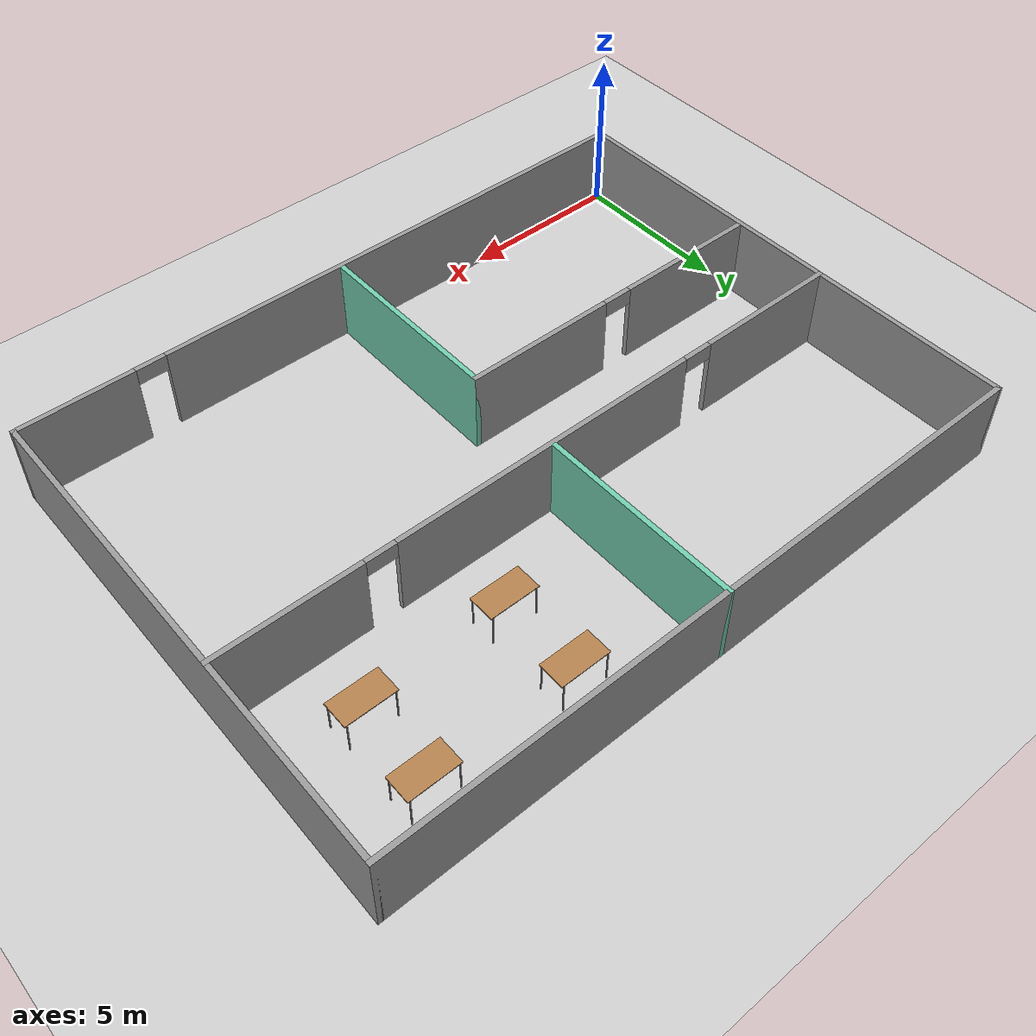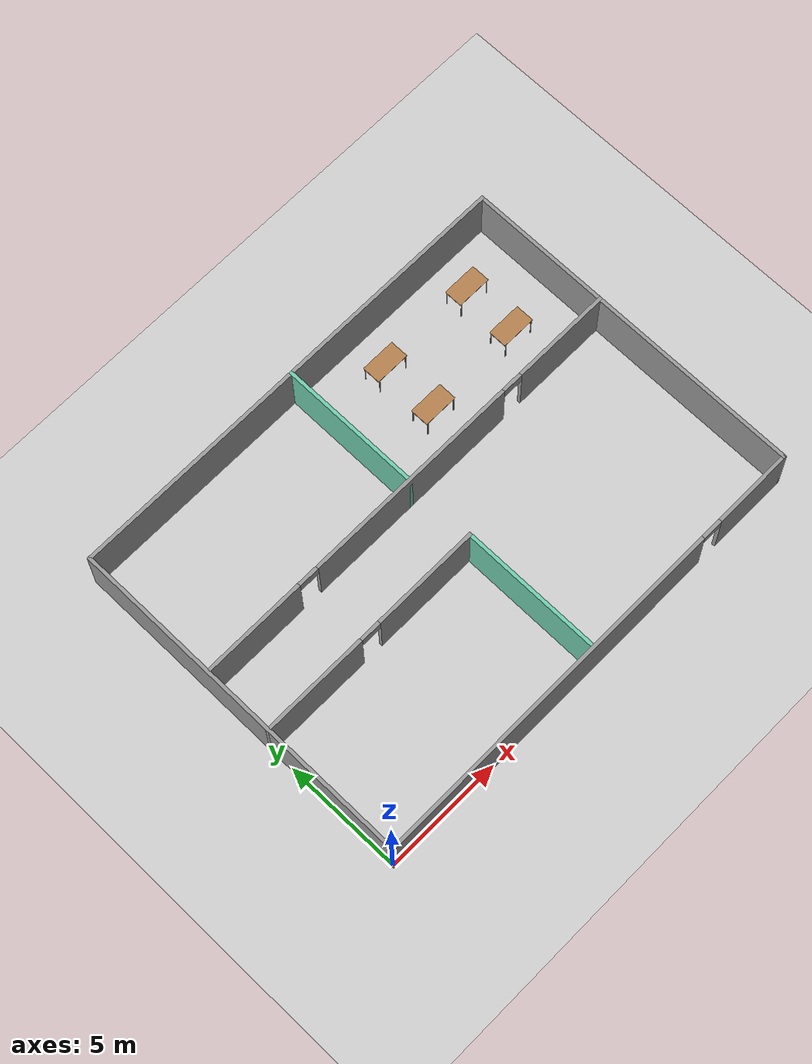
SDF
<sdf version="1.6">
 <world name="default">
  <model name="ground_plane">
   <static>1</static>
   <link name="link">
    <collision name="collision">
     <geometry><plane><normal>0 0 1</normal><size>100 100</size></plane></geometry>
     <surface>
      <contact><collide_bitmask>65535</collide_bitmask></contact>
      <friction><ode><mu>100</mu><mu2>50</mu2></ode></friction>
     </surface>
    </collision>
    <visual name="visual">
     <cast_shadows>0</cast_shadows>
     <geometry><plane><normal>0 0 1</normal><size>100 100</size></plane></geometry>
     <material>
      <script><uri>file://media/materials/scripts/gazebo.material</uri><name>Gazebo/Grey</name></script>
     </material>
    </visual>
   </link>
  </model>
  <model name="mybuilding">
   <pose>10 7.5 0 0 -0 0</pose>
   <link name="Wall_11">
    <collision name="Wall_11_Collision">
     <geometry><box><size>15.15 0.15 2.5</size></box></geometry>
     <pose>0 0 1.25 0 -0 0</pose>
    </collision>
    <visual name="Wall_11_Visual">
     <pose>0 0 1.25 0 -0 0</pose>
     <geometry><box><size>15.15 0.15 2.5</size></box></geometry>
     <material>
      <script><uri>file://media/materials/scripts/gazebo.material</uri><name>Gazebo/Grey</name></script>
      <ambient>1 1 1 1</ambient>
     </material>
     <meta><layer>0</layer></meta>
    </visual>
    <pose>-10 0 0 0 -0 1.5708</pose>
   </link>
   <link name="Wall_13">
    <collision name="Wall_13_Collision">
     <geometry><box><size>20.15 0.15 2.5</size></box></geometry>
     <pose>0 0 1.25 0 -0 0</pose>
    </collision>
    <visual name="Wall_13_Visual">
     <pose>0 0 1.25 0 -0 0</pose>
     <geometry><box><size>20.15 0.15 2.5</size></box></geometry>
     <material>
      <script><uri>file://media/materials/scripts/gazebo.material</uri><name>Gazebo/Grey</name></script>
      <ambient>1 1 1 1</ambient>
     </material>
     <meta><layer>0</layer></meta>
    </visual>
    <pose>0 7.5 0 0 -0 0</pose>
   </link>
   <link name="Wall_15">
    <collision name="Wall_15_Collision">
     <geometry><box><size>15.15 0.15 2.5</size></box></geometry>
     <pose>0 0 1.25 0 -0 0</pose>
    </collision>
    <visual name="Wall_15_Visual">
     <pose>0 0 1.25 0 -0 0</pose>
     <geometry><box><size>15.15 0.15 2.5</size></box></geometry>
     <material>
      <script><uri>file://media/materials/scripts/gazebo.material</uri><name>Gazebo/Grey</name></script>
      <ambient>1 1 1 1</ambient>
     </material>
     <meta><layer>0</layer></meta>
    </visual>
    <pose>10 0 0 0 0 -1.5708</pose>
   </link>
   <link name="Wall_17">
    <pose>0 1.5 0 0 -0 0</pose>
    <visual name="Wall_17_Visual_0">
     <pose>-7.81586 0 1.25 0 -0 0</pose>
     <geometry><box><size>4.51827 0.15 2.5</size></box></geometry>
     <material>
      <script><uri>file://media/materials/scripts/gazebo.material</uri><name>Gazebo/Grey</name></script>
      <ambient>1 1 1 1</ambient>
     </material>
     <meta><layer>0</layer></meta>
    </visual>
    <collision name="Wall_17_Collision_0">
     <geometry><box><size>4.51827 0.15 2.5</size></box></geometry>
     <pose>-7.81586 0 1.25 0 -0 0</pose>
    </collision>
    <visual name="Wall_17_Visual_1">
     <pose>0.10099 0 1.25 0 -0 0</pose>
     <geometry><box><size>9.51544 0.15 2.5</size></box></geometry>
     <material>
      <script><uri>file://media/materials/scripts/gazebo.material</uri><name>Gazebo/Grey</name></script>
      <ambient>1 1 1 1</ambient>
     </material>
     <meta><layer>0</layer></meta>
    </visual>
    <collision name="Wall_17_Collision_1">
     <geometry><box><size>9.51544 0.15 2.5</size></box></geometry>
     <pose>0.10099 0 1.25 0 -0 0</pose>
    </collision>
    <visual name="Wall_17_Visual_2">
     <pose>7.91685 0 1.25 0 -0 0</pose>
     <geometry><box><size>4.31629 0.15 2.5</size></box></geometry>
     <material>
      <script><uri>file://media/materials/scripts/gazebo.material</uri><name>Gazebo/Grey</name></script>
      <ambient>1 1 1 1</ambient>
     </material>
     <meta><layer>0</layer></meta>
    </visual>
    <collision name="Wall_17_Collision_2">
     <geometry><box><size>4.31629 0.15 2.5</size></box></geometry>
     <pose>7.91685 0 1.25 0 -0 0</pose>
    </collision>
    <visual name="Wall_17_Visual_3">
     <pose>-5.10673 0 2.25 0 -0 0</pose>
     <geometry><box><size>0.9 0.15 0.5</size></box></geometry>
     <material>
      <script><uri>file://media/materials/scripts/gazebo.material</uri><name>Gazebo/Grey</name></script>
      <ambient>1 1 1 1</ambient>
     </material>
     <meta><layer>0</layer></meta>
    </visual>
    <collision name="Wall_17_Collision_3">
     <geometry><box><size>0.9 0.15 0.5</size></box></geometry>
     <pose>-5.10673 0 2.25 0 -0 0</pose>
    </collision>
    <visual name="Wall_17_Visual_4">
     <pose>5.30871 0 2.25 0 -0 0</pose>
     <geometry><box><size>0.9 0.15 0.5</size></box></geometry>
     <material>
      <script><uri>file://media/materials/scripts/gazebo.material</uri><name>Gazebo/Grey</name></script>
      <ambient>1 1 1 1</ambient>
     </material>
     <meta><layer>0</layer></meta>
    </visual>
    <collision name="Wall_17_Collision_4">
     <geometry><box><size>0.9 0.15 0.5</size></box></geometry>
     <pose>5.30871 0 2.25 0 -0 0</pose>
    </collision>
   </link>
   <link name="Wall_19">
    <collision name="Wall_19_Collision">
     <geometry><box><size>6.15 0.15 2.5</size></box></geometry>
     <pose>0 0 1.25 0 -0 0</pose>
    </collision>
    <visual name="Wall_19_Visual">
     <pose>0 0 1.25 0 -0 0</pose>
     <geometry><box><size>6.15 0.15 2.5</size></box></geometry>
     <material>
      <script><uri>file://media/materials/scripts/gazebo.material</uri><name>Gazebo/Grey</name></script>
      <ambient>0.435294 0.796078 0.67451 1</ambient>
     </material>
     <meta><layer>0</layer></meta>
    </visual>
    <pose>0 4.5 0 0 0 -1.5708</pose>
   </link>
   <link name="Wall_21">
    <pose>-5 -1.5 0 0 -0 0</pose>
    <visual name="Wall_21_Visual_0">
     <pose>-2.77518 0 1.25 0 -0 0</pose>
     <geometry><box><size>4.59964 0.15 2.5</size></box></geometry>
     <material>
      <script><uri>file://media/materials/scripts/gazebo.material</uri><name>Gazebo/Grey</name></script>
      <ambient>1 1 1 1</ambient>
     </material>
     <meta><layer>0</layer></meta>
    </visual>
    <collision name="Wall_21_Collision_0">
     <geometry><box><size>4.59964 0.15 2.5</size></box></geometry>
     <pose>-2.77518 0 1.25 0 -0 0</pose>
    </collision>
    <visual name="Wall_21_Visual_1">
     <pose>2.74982 0 1.25 0 -0 0</pose>
     <geometry><box><size>4.65036 0.15 2.5</size></box></geometry>
     <material>
      <script><uri>file://media/materials/scripts/gazebo.material</uri><name>Gazebo/Grey</name></script>
      <ambient>1 1 1 1</ambient>
     </material>
     <meta><layer>0</layer></meta>
    </visual>
    <collision name="Wall_21_Collision_1">
     <geometry><box><size>4.65036 0.15 2.5</size></box></geometry>
     <pose>2.74982 0 1.25 0 -0 0</pose>
    </collision>
    <visual name="Wall_21_Visual_2">
     <pose>-0.02536 0 2.25 0 -0 0</pose>
     <geometry><box><size>0.9 0.15 0.5</size></box></geometry>
     <material>
      <script><uri>file://media/materials/scripts/gazebo.material</uri><name>Gazebo/Grey</name></script>
      <ambient>1 1 1 1</ambient>
     </material>
     <meta><layer>0</layer></meta>
    </visual>
    <collision name="Wall_21_Collision_2">
     <geometry><box><size>0.9 0.15 0.5</size></box></geometry>
     <pose>-0.02536 0 2.25 0 -0 0</pose>
    </collision>
   </link>
   <link name="Wall_24">
    <collision name="Wall_24_Collision">
     <geometry><box><size>6.15 0.15 2.5</size></box></geometry>
     <pose>0 0 1.25 0 -0 0</pose>
    </collision>
    <visual name="Wall_24_Visual">
     <pose>0 0 1.25 0 -0 0</pose>
     <geometry><box><size>6.15 0.15 2.5</size></box></geometry>
     <material>
      <script><uri>file://media/materials/scripts/gazebo.material</uri><name>Gazebo/Grey</name></script>
      <ambient>0.435294 0.796078 0.67451 1</ambient>
     </material>
     <meta><layer>0</layer></meta>
    </visual>
    <pose>0 -4.5 0 0 0 -1.5708</pose>
   </link>
   <link name="Wall_9">
    <pose>0 -7.5 0 0 -0 0</pose>
    <visual name="Wall_9_Visual_0">
     <pose>-2.20129 0 1.25 0 -0 0</pose>
     <geometry><box><size>15.7474 0.15 2.5</size></box></geometry>
     <material>
      <script><uri>file://media/materials/scripts/gazebo.material</uri><name>Gazebo/Grey</name></script>
      <ambient>1 1 1 1</ambient>
     </material>
     <meta><layer>0</layer></meta>
    </visual>
    <collision name="Wall_9_Collision_0">
     <geometry><box><size>15.7474 0.15 2.5</size></box></geometry>
     <pose>-2.20129 0 1.25 0 -0 0</pose>
    </collision>
    <visual name="Wall_9_Visual_1">
     <pose>8.32371 0 1.25 0 -0 0</pose>
     <geometry><box><size>3.50258 0.15 2.5</size></box></geometry>
     <material>
      <script><uri>file://media/materials/scripts/gazebo.material</uri><name>Gazebo/Grey</name></script>
      <ambient>1 1 1 1</ambient>
     </material>
     <meta><layer>0</layer></meta>
    </visual>
    <collision name="Wall_9_Collision_1">
     <geometry><box><size>3.50258 0.15 2.5</size></box></geometry>
     <pose>8.32371 0 1.25 0 -0 0</pose>
    </collision>
    <visual name="Wall_9_Visual_2">
     <pose>6.12242 0 2.25 0 -0 0</pose>
     <geometry><box><size>0.9 0.15 0.5</size></box></geometry>
     <material>
      <script><uri>file://media/materials/scripts/gazebo.material</uri><name>Gazebo/Grey</name></script>
      <ambient>1 1 1 1</ambient>
     </material>
     <meta><layer>0</layer></meta>
    </visual>
    <collision name="Wall_9_Collision_2">
     <geometry><box><size>0.9 0.15 0.5</size></box></geometry>
     <pose>6.12242 0 2.25 0 -0 0</pose>
    </collision>
   </link>
   <static>1</static>
  </model>
  <model name="table_1">
   <static>1</static>
   <link name="link">
    <collision name="surface">
     <pose>0 0 1 0 -0 0</pose>
     <geometry><box><size>1.5 0.8 0.03</size></box></geometry>
     <surface><friction><ode><mu>0.6</mu><mu2>0.6</mu2></ode></friction></surface>
    </collision>
    <visual name="visual1">
     <pose>0 0 1 0 -0 0</pose>
     <geometry><box><size>1.5 0.8 0.03</size></box></geometry>
     <material>
      <script><uri>file://media/materials/scripts/gazebo.material</uri><name>Gazebo/Wood</name></script>
     </material>
    </visual>
    <collision name="front_left_leg">
     <pose>0.68 0.38 0.5 0 -0 0</pose>
     <geometry><cylinder><radius>0.02</radius><length>1</length></cylinder></geometry>
    </collision>
    <visual name="front_left_leg">
     <pose>0.68 0.38 0.5 0 -0 0</pose>
     <geometry><cylinder><radius>0.02</radius><length>1</length></cylinder></geometry>
     <material>
      <script><uri>file://media/materials/scripts/gazebo.material</uri><name>Gazebo/Grey</name></script>
     </material>
    </visual>
    <collision name="front_right_leg">
     <pose>0.68 -0.38 0.5 0 -0 0</pose>
     <geometry><cylinder><radius>0.02</radius><length>1</length></cylinder></geometry>
    </collision>
    <visual name="front_right_leg">
     <pose>0.68 -0.38 0.5 0 -0 0</pose>
     <geometry><cylinder><radius>0.02</radius><length>1</length></cylinder></geometry>
     <material>
      <script><uri>file://media/materials/scripts/gazebo.material</uri><name>Gazebo/Grey</name></script>
     </material>
    </visual>
    <collision name="back_right_leg">
     <pose>-0.68 -0.38 0.5 0 -0 0</pose>
     <geometry><cylinder><radius>0.02</radius><length>1</length></cylinder></geometry>
    </collision>
    <visual name="back_right_leg">
     <pose>-0.68 -0.38 0.5 0 -0 0</pose>
     <geometry><cylinder><radius>0.02</radius><length>1</length></cylinder></geometry>
     <material>
      <script><uri>file://media/materials/scripts/gazebo.material</uri><name>Gazebo/Grey</name></script>
     </material>
    </visual>
    <collision name="back_left_leg">
     <pose>-0.68 0.38 0.5 0 -0 0</pose>
     <geometry><cylinder><radius>0.02</radius><length>1</length></cylinder></geometry>
    </collision>
    <visual name="back_left_leg">
     <pose>-0.68 0.38 0.5 0 -0 0</pose>
     <geometry><cylinder><radius>0.02</radius><length>1</length></cylinder></geometry>
     <material>
      <script><uri>file://media/materials/scripts/gazebo.material</uri><name>Gazebo/Grey</name></script>
     </material>
    </visual>
   </link>
   <pose>17.504 13.3719 0 0 -0 0</pose>
  </model>
  <model name="table_2">
   <static>1</static>
   <link name="link">
    <collision name="surface">
     <pose>0 0 1 0 -0 0</pose>
     <geometry><box><size>1.5 0.8 0.03</size></box></geometry>
     <surface><friction><ode><mu>0.6</mu><mu2>0.6</mu2></ode></friction></surface>
    </collision>
    <visual name="visual1">
     <pose>0 0 1 0 -0 0</pose>
     <geometry><box><size>1.5 0.8 0.03</size></box></geometry>
     <material>
      <script><uri>file://media/materials/scripts/gazebo.material</uri><name>Gazebo/Wood</name></script>
     </material>
    </visual>
    <collision name="front_left_leg">
     <pose>0.68 0.38 0.5 0 -0 0</pose>
     <geometry><cylinder><radius>0.02</radius><length>1</length></cylinder></geometry>
    </collision>
    <visual name="front_left_leg">
     <pose>0.68 0.38 0.5 0 -0 0</pose>
     <geometry><cylinder><radius>0.02</radius><length>1</length></cylinder></geometry>
     <material>
      <script><uri>file://media/materials/scripts/gazebo.material</uri><name>Gazebo/Grey</name></script>
     </material>
    </visual>
    <collision name="front_right_leg">
     <pose>0.68 -0.38 0.5 0 -0 0</pose>
     <geometry><cylinder><radius>0.02</radius><length>1</length></cylinder></geometry>
    </collision>
    <visual name="front_right_leg">
     <pose>0.68 -0.38 0.5 0 -0 0</pose>
     <geometry><cylinder><radius>0.02</radius><length>1</length></cylinder></geometry>
     <material>
      <script><uri>file://media/materials/scripts/gazebo.material</uri><name>Gazebo/Grey</name></script>
     </material>
    </visual>
    <collision name="back_right_leg">
     <pose>-0.68 -0.38 0.5 0 -0 0</pose>
     <geometry><cylinder><radius>0.02</radius><length>1</length></cylinder></geometry>
    </collision>
    <visual name="back_right_leg">
     <pose>-0.68 -0.38 0.5 0 -0 0</pose>
     <geometry><cylinder><radius>0.02</radius><length>1</length></cylinder></geometry>
     <material>
      <script><uri>file://media/materials/scripts/gazebo.material</uri><name>Gazebo/Grey</name></script>
     </material>
    </visual>
    <collision name="back_left_leg">
     <pose>-0.68 0.38 0.5 0 -0 0</pose>
     <geometry><cylinder><radius>0.02</radius><length>1</length></cylinder></geometry>
    </collision>
    <visual name="back_left_leg">
     <pose>-0.68 0.38 0.5 0 -0 0</pose>
     <geometry><cylinder><radius>0.02</radius><length>1</length></cylinder></geometry>
     <material>
      <script><uri>file://media/materials/scripts/gazebo.material</uri><name>Gazebo/Grey</name></script>
     </material>
    </visual>
   </link>
   <pose>13.1412 13.36 0 0 -0 0</pose>
  </model>
  <model name="table_clone_7">
   <static>1</static>
   <link name="link">
    <collision name="surface">
     <pose>0 0 1 0 -0 0</pose>
     <geometry><box><size>1.5 0.8 0.03</size></box></geometry>
     <surface><friction><ode><mu>0.6</mu><mu2>0.6</mu2></ode></friction></surface>
    </collision>
    <visual name="visual1">
     <pose>0 0 1 0 -0 0</pose>
     <geometry><box><size>1.5 0.8 0.03</size></box></geometry>
     <material>
      <script><uri>file://media/materials/scripts/gazebo.material</uri><name>Gazebo/Wood</name></script>
     </material>
    </visual>
    <collision name="front_left_leg">
     <pose>0.68 0.38 0.5 0 -0 0</pose>
     <geometry><cylinder><radius>0.02</radius><length>1</length></cylinder></geometry>
    </collision>
    <visual name="front_left_leg">
     <pose>0.68 0.38 0.5 0 -0 0</pose>
     <geometry><cylinder><radius>0.02</radius><length>1</length></cylinder></geometry>
     <material>
      <script><uri>file://media/materials/scripts/gazebo.material</uri><name>Gazebo/Grey</name></script>
     </material>
    </visual>
    <collision name="front_right_leg">
     <pose>0.68 -0.38 0.5 0 -0 0</pose>
     <geometry><cylinder><radius>0.02</radius><length>1</length></cylinder></geometry>
    </collision>
    <visual name="front_right_leg">
     <pose>0.68 -0.38 0.5 0 -0 0</pose>
     <geometry><cylinder><radius>0.02</radius><length>1</length></cylinder></geometry>
     <material>
      <script><uri>file://media/materials/scripts/gazebo.material</uri><name>Gazebo/Grey</name></script>
     </material>
    </visual>
    <collision name="back_right_leg">
     <pose>-0.68 -0.38 0.5 0 -0 0</pose>
     <geometry><cylinder><radius>0.02</radius><length>1</length></cylinder></geometry>
    </collision>
    <visual name="back_right_leg">
     <pose>-0.68 -0.38 0.5 0 -0 0</pose>
     <geometry><cylinder><radius>0.02</radius><length>1</length></cylinder></geometry>
     <material>
      <script><uri>file://media/materials/scripts/gazebo.material</uri><name>Gazebo/Grey</name></script>
     </material>
    </visual>
    <collision name="back_left_leg">
     <pose>-0.68 0.38 0.5 0 -0 0</pose>
     <geometry><cylinder><radius>0.02</radius><length>1</length></cylinder></geometry>
    </collision>
    <visual name="back_left_leg">
     <pose>-0.68 0.38 0.5 0 -0 0</pose>
     <geometry><cylinder><radius>0.02</radius><length>1</length></cylinder></geometry>
     <material>
      <script><uri>file://media/materials/scripts/gazebo.material</uri><name>Gazebo/Grey</name></script>
     </material>
    </visual>
   </link>
   <pose>17.455 11.0301 0 0 -0 0</pose>
  </model>
  <model name="table_clone_8">
   <static>1</static>
   <link name="link">
    <collision name="surface">
     <pose>0 0 1 0 -0 0</pose>
     <geometry><box><size>1.5 0.8 0.03</size></box></geometry>
     <surface><friction><ode><mu>0.6</mu><mu2>0.6</mu2></ode></friction></surface>
    </collision>
    <visual name="visual1">
     <pose>0 0 1 0 -0 0</pose>
     <geometry><box><size>1.5 0.8 0.03</size></box></geometry>
     <material>
      <script><uri>file://media/materials/scripts/gazebo.material</uri><name>Gazebo/Wood</name></script>
     </material>
    </visual>
    <collision name="front_left_leg">
     <pose>0.68 0.38 0.5 0 -0 0</pose>
     <geometry><cylinder><radius>0.02</radius><length>1</length></cylinder></geometry>
    </collision>
    <visual name="front_left_leg">
     <pose>0.68 0.38 0.5 0 -0 0</pose>
     <geometry><cylinder><radius>0.02</radius><length>1</length></cylinder></geometry>
     <material>
      <script><uri>file://media/materials/scripts/gazebo.material</uri><name>Gazebo/Grey</name></script>
     </material>
    </visual>
    <collision name="front_right_leg">
     <pose>0.68 -0.38 0.5 0 -0 0</pose>
     <geometry><cylinder><radius>0.02</radius><length>1</length></cylinder></geometry>
    </collision>
    <visual name="front_right_leg">
     <pose>0.68 -0.38 0.5 0 -0 0</pose>
     <geometry><cylinder><radius>0.02</radius><length>1</length></cylinder></geometry>
     <material>
      <script><uri>file://media/materials/scripts/gazebo.material</uri><name>Gazebo/Grey</name></script>
     </material>
    </visual>
    <collision name="back_right_leg">
     <pose>-0.68 -0.38 0.5 0 -0 0</pose>
     <geometry><cylinder><radius>0.02</radius><length>1</length></cylinder></geometry>
    </collision>
    <visual name="back_right_leg">
     <pose>-0.68 -0.38 0.5 0 -0 0</pose>
     <geometry><cylinder><radius>0.02</radius><length>1</length></cylinder></geometry>
     <material>
      <script><uri>file://media/materials/scripts/gazebo.material</uri><name>Gazebo/Grey</name></script>
     </material>
    </visual>
    <collision name="back_left_leg">
     <pose>-0.68 0.38 0.5 0 -0 0</pose>
     <geometry><cylinder><radius>0.02</radius><length>1</length></cylinder></geometry>
    </collision>
    <visual name="back_left_leg">
     <pose>-0.68 0.38 0.5 0 -0 0</pose>
     <geometry><cylinder><radius>0.02</radius><length>1</length></cylinder></geometry>
     <material>
      <script><uri>file://media/materials/scripts/gazebo.material</uri><name>Gazebo/Grey</name></script>
     </material>
    </visual>
   </link>
   <pose>13.1576 10.8929 0 0 -0 0</pose>
  </model>
 </world>
</sdf>
